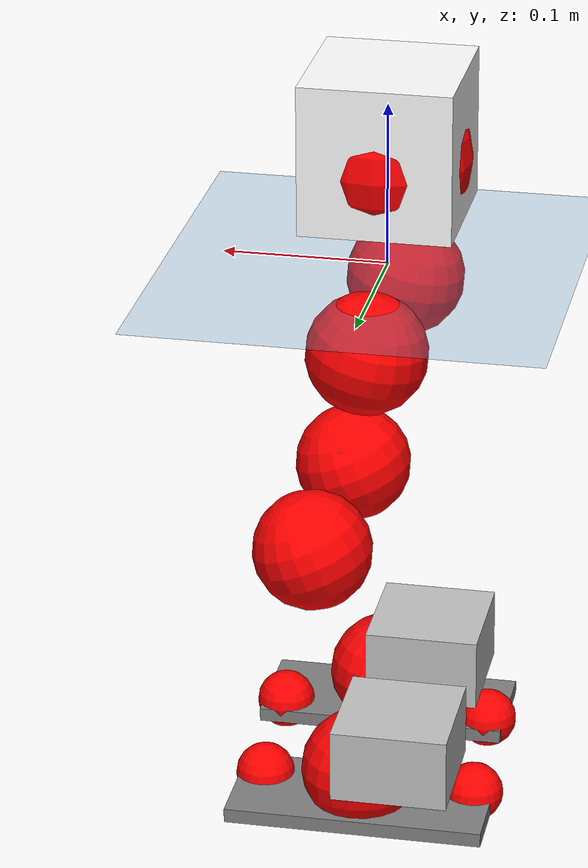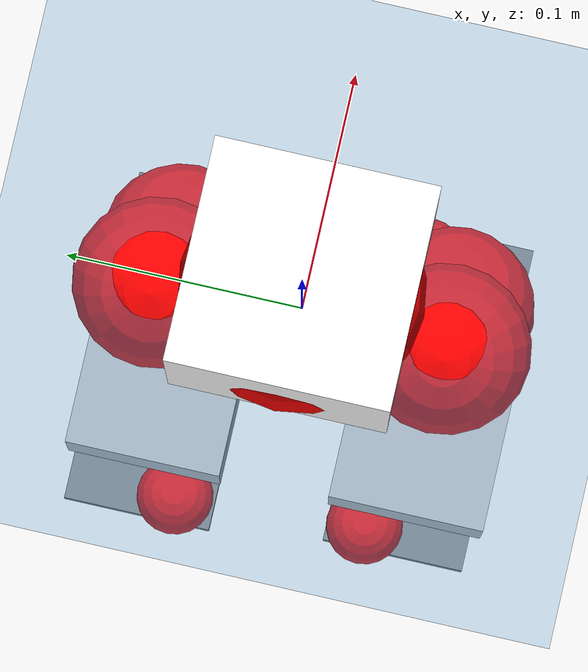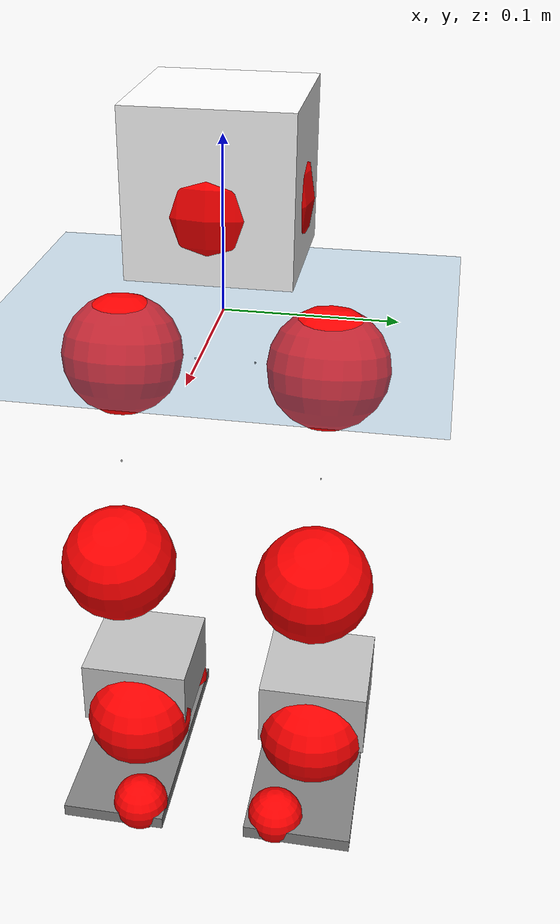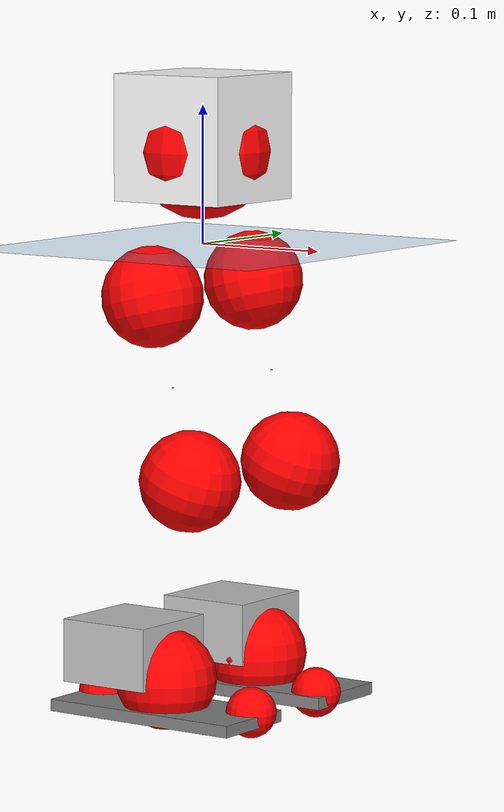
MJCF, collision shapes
<mujoco model="pi_12dof_release_v1">
  <compiler angle="radian" assetdir="assets" balanceinertia="true" inertiafromgeom="false"/>

  <option timestep="0.005" density="1.2" viscosity="2e-05"/>

  <size nkey="1"/>

  <visual>
    <quality shadowsize="8192"/>
    <map shadowclip="0.5"/>
  </visual>

  <default>
    <default class="/">
      <joint armature="0.01" damping="0.01" frictionloss="0.01"/>
      <geom contype="0" conaffinity="0" group="1" solref="-1000 -80"/>
      <site size="0.01 0.005 0.005" group="5"/>
      <general forcelimited="true" biastype="affine" gainprm="20" biasprm="0 -20 -0.5"/>
      <default class="foot">
        <geom size="0.0845 0.036 0.005" type="box" condim="6" group="4" priority="1" friction="0.9 0.2 0.2" solimp="0.015 1 0.005"/>
      </default>
      <default class="reward_collision_sphere">
        <geom group="5" rgba="1 0 0 1"/>
      </default>
    </default>
  </default>

  <asset>
    <texture type="skybox" colorspace="auto" name="//unnamed_texture_0" builtin="gradient" rgb1="0.95 0.95 0.95" rgb2="0.95 0.95 0.95" width="100" height="600"/>
    <texture type="2d" colorspace="auto" name="texplane" builtin="checker" rgb1="0.345 0.575 0.748" rgb2="0.345 0.575 0.748" markrgb="1 1 1" width="512" height="512"/>
    <material name="MatPlane" class="/" texture="texplane" texuniform="true" texrepeat="2 2" specular="0.9"/>
    <mesh name="baselink_1" class="/" file="baselink_1.STL"/>
    <mesh name="r_hip_pitch_link" class="/" file="r_hip_pitch_link.STL"/>
    <mesh name="r_hip_roll_link" class="/" file="r_hip_roll_link.STL"/>
    <mesh name="r_thigh_link" class="/" file="r_thigh_link.STL"/>
    <mesh name="r_calf_link" class="/" file="r_calf_link.STL"/>
    <mesh name="r_ankle_pitch_link" class="/" file="r_ankle_pitch_link.STL"/>
    <mesh name="r_ankle_roll_link" class="/" file="r_ankle_roll_link.STL"/>
    <mesh name="l_hip_pitch_link" class="/" file="l_hip_pitch_link.STL"/>
    <mesh name="l_hip_roll_link" class="/" file="l_hip_roll_link.STL"/>
    <mesh name="l_thigh_link" class="/" file="l_thigh_link.STL"/>
    <mesh name="l_calf_link" class="/" file="l_calf_link.STL"/>
    <mesh name="l_ankle_pitch_link" class="/" file="l_ankle_pitch_link.STL"/>
    <mesh name="l_ankle_roll_link" class="/" file="l_ankle_roll_link.STL"/>
  </asset>

  <worldbody>
    <geom name="floor" class="/" size="100 100 0.125" type="plane" group="0" material="MatPlane"/>
    <light name="toplight_shadow" class="/" pos="0 0 5" dir="0.0990148 0.0990148 -0.990148" type="directional" ambient="0.04 0.04 0.04" diffuse="0.55 0.55 0.55" specular="0.12 0.12 0.12"/>
    <light name="toplight_fill" class="/" pos="0 0 5" dir="0.0990148 0.0990148 -0.990148" type="directional" castshadow="false" ambient="0.04 0.04 0.04" diffuse="0.3 0.3 0.3" specular="0.08 0.08 0.08"/>
    <body name="trunk" pos="-4.15324e-05 3.5004e-05 3.27734e-05" quat="1 9.47988e-05 -1.00596e-05 0.000112295">
      <inertial pos="0.00254741 0.000845592 0.0395975" quat="0.69527 0.00982198 0.00927619 0.718622" mass="1.66373" diaginertia="0.00882865 0.00290482 0.00358189"/>
      <joint name="//unnamed_joint_0" type="free"/>
      <geom name="//unnamed_geom_1" class="/" type="mesh" density="0" rgba="1 1 1 1" mesh="baselink_1"/>
      <geom name="//unnamed_geom_2" class="/" size="0.0456192 0.0456192 0.0456192" pos="0 0 0.0774114" type="box" rgba="1 1 1 1"/>
      <geom name="//unnamed_geom_3" class="reward_collision_sphere" size="0.0501811" pos="0 0 0.067735"/>
      <site name="imu" class="/" pos="-0.00415268 0.0040461 -0.00460593" size="0.00912385"/>
      <camera name="track" class="/" pos="0 -1.58958 0" quat="0.707107 0.707107 0 0" mode="trackcom"/>
      <camera name="ego_camera" class="/" pos="0.0731039 0 0.174176" quat="-0.5 -0.5 0.5 0.5"/>
      <body name="r_hip_pitch_link" pos="-0.000423725 -0.0172577 -0.0323211" quat="0.992196 0.000256536 -0.124686 0.000129754">
        <inertial pos="0.000156874 -0.0451709 0.00106379" quat="-0.0189017 0.705387 -0.0307042 0.707905" mass="0.284162" diaginertia="9.60824e-05 3.16509e-05 7.03039e-05"/>
        <joint name="r_hip_pitch_joint" class="/" pos="0 0 0" axis="-0.0112555 -0.99993 -0.00358084" range="-1.76002 1.25456" armature="0.00945196" damping="0.0133422" frictionloss="0.00901733"/>
        <geom name="//unnamed_geom_4" class="/" type="mesh" density="0" rgba="0.75294 0.75294 0.75294 1" mesh="r_hip_pitch_link"/>
        <geom name="//unnamed_geom_5" class="/" size="0.000456192 0.000456192 0.000456192" type="box" rgba="0.75294 0.75294 0.75294 1"/>
        <body name="r_hip_roll_link" pos="0.000643278 -0.0442978 -0.000697246" quat="1 3.32815e-05 1.12174e-05 1.26099e-05">
          <inertial pos="-0.00132277 -0.000347075 -0.0589814" quat="0.706317 -0.0797256 -0.0824157 0.698547" mass="0.289828" diaginertia="0.000295255 8.73681e-05 0.000104846"/>
          <joint name="r_hip_roll_joint" class="/" pos="0 0 0" axis="-0.999997 0.000801091 0.00230905" range="-0.121271 0.488868" armature="0.00891286" damping="0.00418132" frictionloss="0.0087845"/>
          <geom name="//unnamed_geom_6" class="/" type="mesh" density="0" rgba="0.75294 0.75294 0.75294 1" mesh="r_hip_roll_link"/>
          <geom name="//unnamed_geom_7" class="/" size="0.000456192 0.000456192 0.000456192" type="box" rgba="0.75294 0.75294 0.75294 1"/>
          <geom name="//unnamed_geom_8" class="reward_collision_sphere" size="0.0364954"/>
          <body name="r_thigh_link" pos="0.000716069 0.000807811 -0.0661344" quat="1 -0.00050345 0.000297101 0.000304856">
            <inertial pos="0.000482434 0.00075495 -0.0456758" quat="0.737306 0.675559 -2.65872e-05 5.23608e-05" mass="0.0863676" diaginertia="0.000110118 2.95851e-05 4.91488e-05"/>
            <joint name="r_thigh_joint" class="/" pos="0 0 0" axis="-0.00156407 0.00221083 -0.999996" stiffness="0.00023282" range="-0.304812 0.591185" armature="0.00944231" damping="0.00312367" frictionloss="0.00902205"/>
            <geom name="//unnamed_geom_9" class="/" type="mesh" density="0" rgba="0.75294 0.75294 0.75294 1" mesh="r_thigh_link"/>
            <geom name="//unnamed_geom_10" class="/" size="0.000456192 0.000456192 0.000456192" type="box" rgba="0.75294 0.75294 0.75294 1"/>
            <body name="r_calf_link" pos="-0.000992039 -0.000703273 -0.0673798" quat="0.947665 -0.000117102 0.319265 0.000343783">
              <inertial pos="-0.000178294 -0.000820846 -0.0677664" quat="0.999982 -0.00265981 0.00052868 0.00529066" mass="0.603786" diaginertia="0.00304244 0.00110574 0.000148133"/>
              <joint name="r_calf_joint" class="/" pos="0 0 0" axis="-0.00304088 -0.99997 -0.00707142" range="-1.6308 0.645902" armature="0.00901268" damping="0.00730987" frictionloss="0.00935551"/>
              <geom name="//unnamed_geom_11" class="/" type="mesh" density="0" rgba="0.75294 0.75294 0.75294 1" mesh="r_calf_link"/>
              <geom name="//unnamed_geom_12" class="/" size="0.000456192 0.000456192 0.000456192" type="box" rgba="0.75294 0.75294 0.75294 1"/>
              <geom name="//unnamed_geom_13" class="reward_collision_sphere" size="0.0364954"/>
              <body name="r_ankle_pitch_link" pos="0.00270676 9.92989e-05 -0.135459" quat="0.980073 7.35369e-05 -0.198639 -0.00036531">
                <inertial pos="0.00492096 0.00239241 -0.000241215" quat="0.00129167 0.706714 -0.00236198 0.707495" mass="0.138549" diaginertia="0.000272422 7.29913e-05 0.000104431"/>
                <joint name="r_ankle_pitch_joint" class="/" pos="0 0 0" axis="-0.00483569 -0.999982 0.00356767" range="-1.29063 0.481206" armature="0.00924757" damping="0.0159994" frictionloss="0.00951904"/>
                <geom name="//unnamed_geom_14" class="/" type="mesh" density="0" rgba="0.75294 0.75294 0.75294 1" mesh="r_ankle_pitch_link"/>
                <geom name="//unnamed_geom_15" class="/" size="0.035583 0.0364954 0.0228096" type="box" rgba="0.75294 0.75294 0.75294 1"/>
                <body name="r_ankle_roll_link" pos="0.0764995 0.00175473 -0.000442043" quat="1 9.54327e-05 -8.20184e-05 7.83647e-05">
                  <inertial pos="-0.0223532 0.000102383 -0.0122481" quat="0.562102 0.430015 0.43368 0.557718" mass="0.384558" diaginertia="0.000990217 0.000329339 0.000241979"/>
                  <joint name="r_ankle_roll_joint" class="/" pos="0 0 0" axis="-0.999999 0.000952618 0.000381176" range="-0.140096 0.142907" armature="0.00914089" damping="0.00641519" frictionloss="0.0100176"/>
                  <geom name="//unnamed_geom_16" class="/" type="mesh" density="0" rgba="0.75294 0.75294 0.75294 1" mesh="r_ankle_roll_link"/>
                  <geom name="//unnamed_geom_17" class="/" type="mesh" rgba="0.75294 0.75294 0.75294 1" mesh="r_ankle_roll_link"/>
                  <geom name="right_foot" class="foot" size="0.0779712 0.033529 0.00425863" pos="-0.0497107 0 -0.0425763"/>
                  <geom name="//unnamed_geom_19" class="reward_collision_sphere" size="0.0364954" pos="-0.0487359 0 -0.0193529"/>
                  <geom name="//unnamed_geom_20" class="reward_collision_sphere" size="0.0182477" pos="0.0146208 0.0158958 -0.0387057"/>
                  <geom name="//unnamed_geom_21" class="reward_collision_sphere" size="0.0182477" pos="-0.116966 0.0158958 -0.0387057"/>
                  <site name="right_foot" class="foot" pos="-0.0497107 0 -0.0425763" size="0.00912385"/>
                </body>
              </body>
            </body>
          </body>
        </body>
      </body>
      <body name="l_hip_pitch_link" pos="0.000655978 0.0187284 -0.0318381" quat="0.992203 2.59289e-05 -0.124635 2.19897e-05">
        <inertial pos="0.00187222 0.0417081 -0.000101665" quat="-0.0358397 0.703207 0.0395943 0.708977" mass="0.288036" diaginertia="0.000111736 3.31712e-05 8.64771e-05"/>
        <joint name="l_hip_pitch_joint" class="/" pos="0 0 0" axis="-0.00306924 0.999995 -0.00104779" range="-1.23605 1.72596" armature="0.00885652" damping="0.00602674" frictionloss="0.00877224"/>
        <geom name="//unnamed_geom_22" class="/" type="mesh" density="0" rgba="0.75294 0.75294 0.75294 1" mesh="l_hip_pitch_link"/>
        <geom name="//unnamed_geom_23" class="/" size="0.000456192 0.000456192 0.000456192" type="box" rgba="0.75294 0.75294 0.75294 1"/>
        <body name="l_hip_roll_link" pos="-4.21074e-07 0.0433589 0.000112454" quat="1 -7.13595e-05 -9.85335e-05 0.00050107">
          <inertial pos="-0.00158821 7.6549e-05 -0.0593096" quat="0.697575 -0.0770413 -0.0819728 0.707625" mass="0.298333" diaginertia="0.000297431 9.05653e-05 0.000109724"/>
          <joint name="l_hip_roll_joint" class="/" pos="0 0 0" axis="-0.999982 -0.00174897 0.00580118" range="-0.459692 0.0854315" armature="0.00911548" damping="0.00302808" frictionloss="0.00933652"/>
          <geom name="//unnamed_geom_24" class="/" type="mesh" density="0" rgba="0.75294 0.75294 0.75294 1" mesh="l_hip_roll_link"/>
          <geom name="//unnamed_geom_25" class="/" size="0.000456192 0.000456192 0.000456192" type="box" rgba="0.75294 0.75294 0.75294 1"/>
          <geom name="//unnamed_geom_26" class="reward_collision_sphere" size="0.0364954"/>
          <body name="l_thigh_link" pos="-0.000262767 -2.60016e-07 -0.0670916" quat="1 -0.000196996 0.000353418 3.93144e-05">
            <inertial pos="0.00103163 -0.000590082 -0.0461885" quat="0.675514 0.737347 -2.46832e-05 -0.000181806" mass="0.0866816" diaginertia="0.000113893 3.13583e-05 5.18367e-05"/>
            <joint name="l_thigh_joint" class="/" pos="0 0 0" axis="-0.0012261 0.000409992 -0.999999" range="-0.607609 0.279061" armature="0.00946773" damping="0.00630827" frictionloss="0.00913169"/>
            <geom name="//unnamed_geom_27" class="/" type="mesh" density="0" rgba="0.75294 0.75294 0.75294 1" mesh="l_thigh_link"/>
            <geom name="//unnamed_geom_28" class="/" size="0.000456192 0.000456192 0.000456192" type="box" rgba="0.75294 0.75294 0.75294 1"/>
            <body name="l_calf_link" pos="-0.000140732 0.000343114 -0.0681673" quat="0.947557 0.00023247 0.319588 0.000333554">
              <inertial pos="0.000771403 0.0013984 -0.0669751" quat="0.999989 -0.00227379 0.00155699 -0.00366768" mass="0.623911" diaginertia="0.00309158 0.00112798 0.000148886"/>
              <joint name="l_calf_joint" class="/" pos="0 0 0" axis="0.00104734 0.999999 -0.000212292" range="-0.651643 1.67213" armature="0.00922639" damping="0.00618846" frictionloss="0.00932349"/>
              <geom name="//unnamed_geom_29" class="/" type="mesh" density="0" rgba="0.75294 0.75294 0.75294 1" mesh="l_calf_link"/>
              <geom name="//unnamed_geom_30" class="/" size="0.000456192 0.000456192 0.000456192" type="box" rgba="0.75294 0.75294 0.75294 1"/>
              <geom name="//unnamed_geom_31" class="reward_collision_sphere" size="0.0364954"/>
              <body name="l_ankle_pitch_link" pos="0.00071884 0.000604473 -0.137597" quat="0.980077 -8.07807e-05 -0.198619 0.000280224">
                <inertial pos="0.00476534 0.00136401 -0.000921441" quat="-0.00113139 0.706199 0.00372372 0.708002" mass="0.130024" diaginertia="0.000263491 6.87919e-05 9.8442e-05"/>
                <joint name="l_ankle_pitch_joint" class="/" pos="0 0 0" axis="-0.00284323 0.999968 0.00751414" range="-0.495869 1.29791" armature="0.00899105" damping="0" frictionloss="0.00916788"/>
                <geom name="//unnamed_geom_32" class="/" type="mesh" density="0" rgba="0.75294 0.75294 0.75294 1" mesh="l_ankle_pitch_link"/>
                <geom name="//unnamed_geom_33" class="/" size="0.035583 0.0364954 0.0228096" type="box" rgba="0.75294 0.75294 0.75294 1"/>
                <body name="l_ankle_roll_link" pos="0.0726167 -0.000455556 -0.000311689" quat="1 0.000111347 7.13652e-05 9.11469e-06">
                  <inertial pos="-0.0246387 -0.000376595 -0.0140998" quat="0.56357 0.431483 0.426469 0.560656" mass="0.391992" diaginertia="0.00101035 0.000333497 0.000249497"/>
                  <joint name="l_ankle_roll_joint" class="/" pos="0 0 0" axis="-0.999941 0.0106799 -0.00201869" range="-0.156647 0.109376" armature="0.0091114" damping="0.0105234" frictionloss="0.00819283"/>
                  <geom name="//unnamed_geom_34" class="/" type="mesh" density="0" rgba="0.75294 0.75294 0.75294 1" mesh="l_ankle_roll_link"/>
                  <geom name="//unnamed_geom_35" class="/" type="mesh" rgba="0.75294 0.75294 0.75294 1" mesh="l_ankle_roll_link"/>
                  <geom name="left_foot" class="foot" size="0.0795153 0.0349674 0.00446837" pos="-0.0497107 0 -0.0425763"/>
                  <geom name="//unnamed_geom_37" class="reward_collision_sphere" size="0.0364954" pos="-0.0487359 0 -0.0193529"/>
                  <geom name="//unnamed_geom_38" class="reward_collision_sphere" size="0.0182477" pos="0.0146208 -0.0158958 -0.0387057"/>
                  <geom name="//unnamed_geom_39" class="reward_collision_sphere" size="0.0182477" pos="-0.116966 -0.0158958 -0.0387057"/>
                  <site name="left_foot" class="foot" pos="-0.0497107 0 -0.0425763" size="0.00912385"/>
                </body>
              </body>
            </body>
          </body>
        </body>
      </body>
    </body>
  </worldbody>

  <contact>
    <pair class="/" geom1="floor" geom2="right_foot" name="//unnamed_contact_1"/>
    <pair class="/" geom1="floor" geom2="left_foot" name="//unnamed_contact_0"/>
  </contact>

  <actuator>
    <general name="r_hip_pitch_joint" class="/" joint="r_hip_pitch_joint" forcerange="-19.2237 19.2237" gainprm="18.7521" biasprm="0 -18.7521 -0.446845"/>
    <general name="r_hip_roll_joint" class="/" joint="r_hip_roll_joint" forcerange="-19.0676 19.0676" gainprm="18.7521" biasprm="0 -18.7521 -0.446845"/>
    <general name="r_thigh_joint" class="/" joint="r_thigh_joint" forcerange="-19.6104 19.6104" gainprm="18.7521" biasprm="0 -18.7521 -0.446845"/>
    <general name="r_calf_joint" class="/" joint="r_calf_joint" forcerange="-18.5823 18.5823" gainprm="18.7521" biasprm="0 -18.7521 -0.446845"/>
    <general name="r_ankle_pitch_joint" class="/" joint="r_ankle_pitch_joint" forcerange="-18.8124 18.8124" gainprm="18.7521" biasprm="0 -18.7521 -0.446845"/>
    <general name="r_ankle_roll_joint" class="/" joint="r_ankle_roll_joint" forcerange="-20.0716 20.0716" gainprm="18.7521" biasprm="0 -18.7521 -0.446845"/>
    <general name="l_hip_pitch_joint" class="/" joint="l_hip_pitch_joint" forcerange="-19.763 19.763" gainprm="18.7521" biasprm="0 -18.7521 -0.446845"/>
    <general name="l_hip_roll_joint" class="/" joint="l_hip_roll_joint" forcerange="-17.7354 17.7354" gainprm="18.7521" biasprm="0 -18.7521 -0.446845"/>
    <general name="l_thigh_joint" class="/" joint="l_thigh_joint" forcerange="-18.9419 18.9419" gainprm="18.7521" biasprm="0 -18.7521 -0.446845"/>
    <general name="l_calf_joint" class="/" joint="l_calf_joint" forcerange="-19.5729 19.5729" gainprm="18.7521" biasprm="0 -18.7521 -0.446845"/>
    <general name="l_ankle_pitch_joint" class="/" joint="l_ankle_pitch_joint" forcerange="-18.5767 18.5767" gainprm="18.7521" biasprm="0 -18.7521 -0.446845"/>
    <general name="l_ankle_roll_joint" class="/" joint="l_ankle_roll_joint" forcerange="-19.8497 19.8497" gainprm="18.7521" biasprm="0 -18.7521 -0.446845"/>
  </actuator>

  <sensor>
    <gyro site="imu" name="imu_angular_velocity"/>
    <velocimeter site="imu" name="imu_linear_velocity"/>
    <framelinvel objtype="site" objname="left_foot" name="left_foot_global_linear_velocity"/>
    <framelinvel objtype="site" objname="right_foot" name="right_foot_global_linear_velocity"/>
  </sensor>

  <keyframe>
    <key name="home" qpos="0 0 0.291 1 0 0 0 0.4 0 0 -0.8 0.4 0 -0.4 0 0 0.8 -0.4 0"/>
  </keyframe>
</mujoco>
